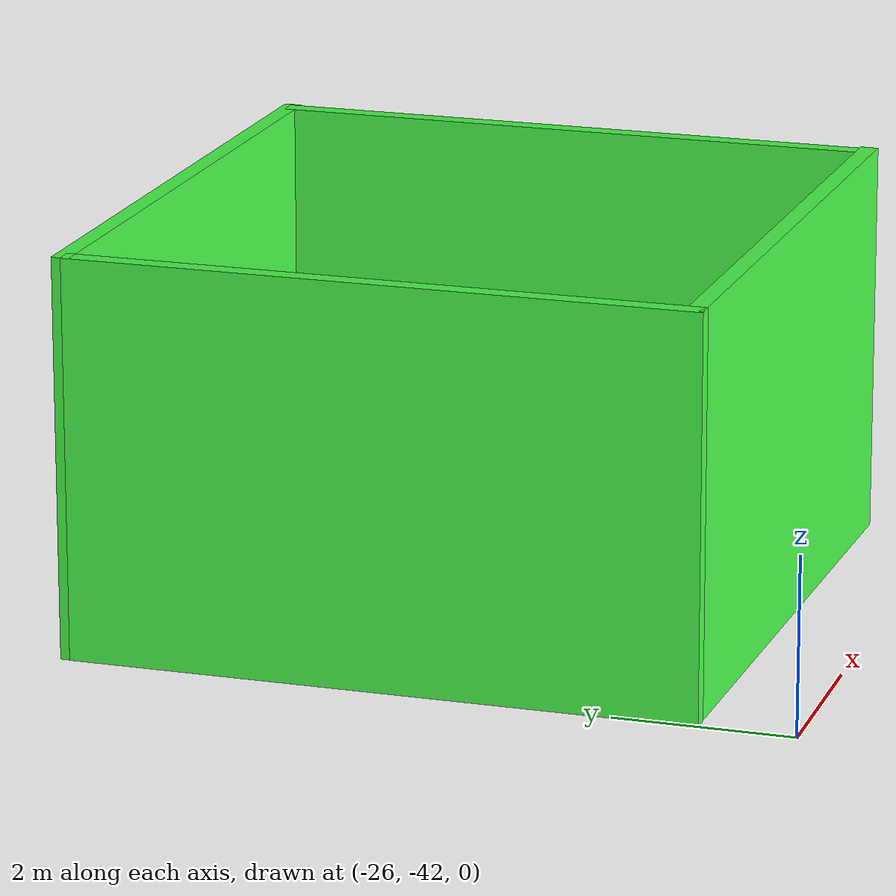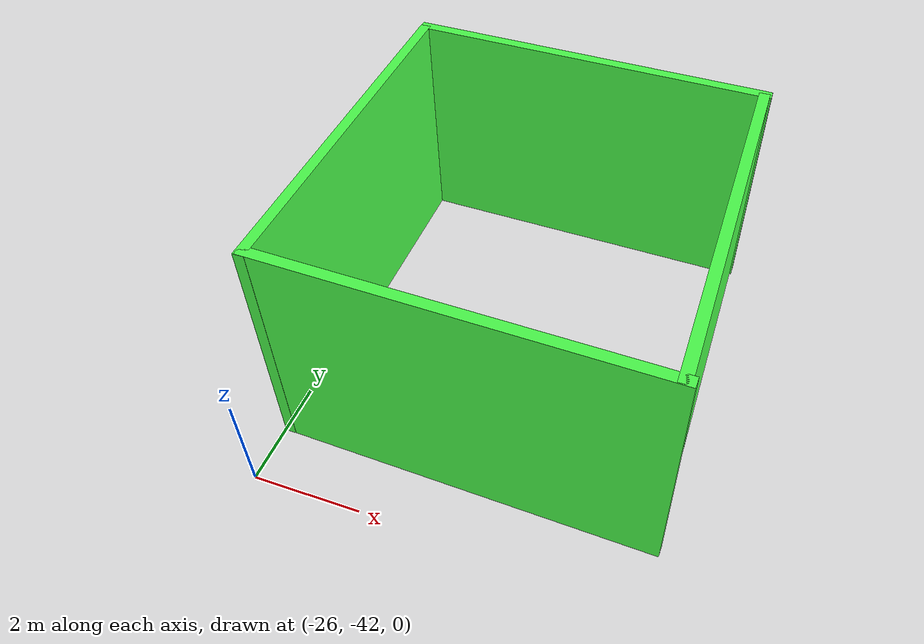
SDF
<sdf version="1.7">
 <world name="default">
  <model name="wall_clone_0_0">
   <pose>-22.5 -37.5 2.25 0 -0 0</pose>
   <frame name="closed_green_wall::__model__" attached_to="closed_green_wall::link_0">
    <pose relative_to="__model__">0 0 0 0 -0 0</pose>
   </frame>
   <link name="closed_green_wall::link_0">
    <inertial>
     <mass>1</mass>
     <inertia>
      <ixx>0.166667</ixx>
      <ixy>0</ixy>
      <ixz>0</ixz>
      <iyy>0.166667</iyy>
      <iyz>0</iyz>
      <izz>0.166667</izz>
     </inertia>
    </inertial>
    <pose relative_to="closed_green_wall::__model__">3.37098 -0.107634 -0 0 -0 0</pose>
    <visual name="visual">
     <geometry><box><size>0.2 7 4.5</size></box></geometry>
     <material>
      <lighting>1</lighting>
      <script><uri>file://media/materials/scripts/gazebo.material</uri><name>Gazebo/Grey</name></script>
      <shader type="vertex"><normal_map>__default__</normal_map></shader>
      <ambient>0.3 1 0.3 1</ambient>
      <diffuse>0.7 0.7 0.7 1</diffuse>
      <specular>0.01 0.01 0.01 1</specular>
      <emissive>0 0 0 1</emissive>
     </material>
    </visual>
    <collision name="collision">
     <geometry><box><size>0.2 7 4.5</size></box></geometry>
     <surface>
      <friction>
       <ode><mu>1</mu><mu2>1</mu2><fdir1>0 0 0</fdir1><slip1>0</slip1><slip2>0</slip2></ode>
       <torsional>
        <coefficient>1</coefficient>
        <patch_radius>0</patch_radius>
        <surface_radius>0</surface_radius>
        <use_patch_radius>1</use_patch_radius>
        <ode><slip>0</slip></ode>
       </torsional>
      </friction>
      <bounce><restitution_coefficient>0</restitution_coefficient><threshold>1e+06</threshold></bounce>
      <contact>
       <collide_without_contact>0</collide_without_contact>
       <collide_without_contact_bitmask>1</collide_without_contact_bitmask>
       <collide_bitmask>1</collide_bitmask>
       <ode>
        <soft_cfm>0</soft_cfm>
        <soft_erp>0.2</soft_erp>
        <kp>1e+13</kp>
        <kd>1</kd>
        <max_vel>0.01</max_vel>
        <min_depth>0</min_depth>
       </ode>
       <bullet>
        <split_impulse>1</split_impulse>
        <split_impulse_penetration_threshold>-0.01</split_impulse_penetration_threshold>
        <soft_cfm>0</soft_cfm>
        <soft_erp>0.2</soft_erp>
        <kp>1e+13</kp>
        <kd>1</kd>
       </bullet>
      </contact>
     </surface>
    </collision>
   </link>
   <link name="closed_green_wall::link_0_clone">
    <inertial>
     <mass>1</mass>
     <inertia>
      <ixx>0.166667</ixx>
      <ixy>0</ixy>
      <ixz>0</ixz>
      <iyy>0.166667</iyy>
      <iyz>0</iyz>
      <izz>0.166667</izz>
     </inertia>
    </inertial>
    <pose relative_to="closed_green_wall::__model__">0.024232 -3.42805 -0 0 0 -1.59986</pose>
    <visual name="visual">
     <geometry><box><size>0.2 7 4.5</size></box></geometry>
     <material>
      <lighting>1</lighting>
      <script><uri>file://media/materials/scripts/gazebo.material</uri><name>Gazebo/Grey</name></script>
      <shader type="vertex"><normal_map>__default__</normal_map></shader>
      <ambient>0.3 1 0.3 1</ambient>
      <diffuse>0.7 0.7 0.7 1</diffuse>
      <specular>0.01 0.01 0.01 1</specular>
      <emissive>0 0 0 1</emissive>
     </material>
    </visual>
    <collision name="collision">
     <geometry><box><size>0.2 7 4.5</size></box></geometry>
     <surface>
      <friction>
       <ode><mu>1</mu><mu2>1</mu2><fdir1>0 0 0</fdir1><slip1>0</slip1><slip2>0</slip2></ode>
       <torsional>
        <coefficient>1</coefficient>
        <patch_radius>0</patch_radius>
        <surface_radius>0</surface_radius>
        <use_patch_radius>1</use_patch_radius>
        <ode><slip>0</slip></ode>
       </torsional>
      </friction>
      <bounce><restitution_coefficient>0</restitution_coefficient><threshold>1e+06</threshold></bounce>
      <contact>
       <collide_without_contact>0</collide_without_contact>
       <collide_without_contact_bitmask>1</collide_without_contact_bitmask>
       <collide_bitmask>1</collide_bitmask>
       <ode>
        <soft_cfm>0</soft_cfm>
        <soft_erp>0.2</soft_erp>
        <kp>1e+13</kp>
        <kd>1</kd>
        <max_vel>0.01</max_vel>
        <min_depth>0</min_depth>
       </ode>
       <bullet>
        <split_impulse>1</split_impulse>
        <split_impulse_penetration_threshold>-0.01</split_impulse_penetration_threshold>
        <soft_cfm>0</soft_cfm>
        <soft_erp>0.2</soft_erp>
        <kp>1e+13</kp>
        <kd>1</kd>
       </bullet>
      </contact>
     </surface>
    </collision>
   </link>
   <link name="closed_green_wall::link_0_clone_0">
    <inertial>
     <mass>1</mass>
     <inertia>
      <ixx>0.166667</ixx>
      <ixy>0</ixy>
      <ixz>0</ixz>
      <iyy>0.166667</iyy>
      <iyz>0</iyz>
      <izz>0.166667</izz>
     </inertia>
    </inertial>
    <pose relative_to="closed_green_wall::__model__">-3.40001 0.065208 -0 0 -0 0</pose>
    <visual name="visual">
     <geometry><box><size>0.2 7 4.5</size></box></geometry>
     <material>
      <lighting>1</lighting>
      <script><uri>file://media/materials/scripts/gazebo.material</uri><name>Gazebo/Grey</name></script>
      <shader type="vertex"><normal_map>__default__</normal_map></shader>
      <ambient>0.3 1 0.3 1</ambient>
      <diffuse>0.7 0.7 0.7 1</diffuse>
      <specular>0.01 0.01 0.01 1</specular>
      <emissive>0 0 0 1</emissive>
     </material>
    </visual>
    <collision name="collision">
     <geometry><box><size>0.2 7 4.5</size></box></geometry>
     <surface>
      <friction>
       <ode><mu>1</mu><mu2>1</mu2><fdir1>0 0 0</fdir1><slip1>0</slip1><slip2>0</slip2></ode>
       <torsional>
        <coefficient>1</coefficient>
        <patch_radius>0</patch_radius>
        <surface_radius>0</surface_radius>
        <use_patch_radius>1</use_patch_radius>
        <ode><slip>0</slip></ode>
       </torsional>
      </friction>
      <bounce><restitution_coefficient>0</restitution_coefficient><threshold>1e+06</threshold></bounce>
      <contact>
       <collide_without_contact>0</collide_without_contact>
       <collide_without_contact_bitmask>1</collide_without_contact_bitmask>
       <collide_bitmask>1</collide_bitmask>
       <ode>
        <soft_cfm>0</soft_cfm>
        <soft_erp>0.2</soft_erp>
        <kp>1e+13</kp>
        <kd>1</kd>
        <max_vel>0.01</max_vel>
        <min_depth>0</min_depth>
       </ode>
       <bullet>
        <split_impulse>1</split_impulse>
        <split_impulse_penetration_threshold>-0.01</split_impulse_penetration_threshold>
        <soft_cfm>0</soft_cfm>
        <soft_erp>0.2</soft_erp>
        <kp>1e+13</kp>
        <kd>1</kd>
       </bullet>
      </contact>
     </surface>
    </collision>
   </link>
   <link name="closed_green_wall::link_0_clone_clone">
    <inertial>
     <mass>1</mass>
     <inertia>
      <ixx>0.166667</ixx>
      <ixy>0</ixy>
      <ixz>0</ixz>
      <iyy>0.166667</iyy>
      <iyz>0</iyz>
      <izz>0.166667</izz>
     </inertia>
    </inertial>
    <pose relative_to="closed_green_wall::__model__">0.004806 3.47046 -0 0 0 -1.59986</pose>
    <visual name="visual">
     <geometry><box><size>0.2 7 4.5</size></box></geometry>
     <material>
      <lighting>1</lighting>
      <script><uri>file://media/materials/scripts/gazebo.material</uri><name>Gazebo/Grey</name></script>
      <shader type="vertex"><normal_map>__default__</normal_map></shader>
      <ambient>0.3 1 0.3 1</ambient>
      <diffuse>0.7 0.7 0.7 1</diffuse>
      <specular>0.01 0.01 0.01 1</specular>
      <emissive>0 0 0 1</emissive>
     </material>
    </visual>
    <collision name="collision">
     <geometry><box><size>0.2 7 4.5</size></box></geometry>
     <surface>
      <friction>
       <ode><mu>1</mu><mu2>1</mu2><fdir1>0 0 0</fdir1><slip1>0</slip1><slip2>0</slip2></ode>
       <torsional>
        <coefficient>1</coefficient>
        <patch_radius>0</patch_radius>
        <surface_radius>0</surface_radius>
        <use_patch_radius>1</use_patch_radius>
        <ode><slip>0</slip></ode>
       </torsional>
      </friction>
      <bounce><restitution_coefficient>0</restitution_coefficient><threshold>1e+06</threshold></bounce>
      <contact>
       <collide_without_contact>0</collide_without_contact>
       <collide_without_contact_bitmask>1</collide_without_contact_bitmask>
       <collide_bitmask>1</collide_bitmask>
       <ode>
        <soft_cfm>0</soft_cfm>
        <soft_erp>0.2</soft_erp>
        <kp>1e+13</kp>
        <kd>1</kd>
        <max_vel>0.01</max_vel>
        <min_depth>0</min_depth>
       </ode>
       <bullet>
        <split_impulse>1</split_impulse>
        <split_impulse_penetration_threshold>-0.01</split_impulse_penetration_threshold>
        <soft_cfm>0</soft_cfm>
        <soft_erp>0.2</soft_erp>
        <kp>1e+13</kp>
        <kd>1</kd>
       </bullet>
      </contact>
     </surface>
    </collision>
   </link>
   <joint name="closed_green_wall::link_0_JOINT_1" type="fixed">
    <parent>closed_green_wall::link_0</parent>
    <child>closed_green_wall::link_0_clone_clone</child>
    <physics>
     <ode><limit><cfm>0</cfm><erp>0.2</erp></limit><suspension><cfm>0</cfm><erp>0.2</erp></suspension></ode>
    </physics>
   </joint>
   <joint name="closed_green_wall::link_0_clone_0_JOINT_3" type="fixed">
    <parent>closed_green_wall::link_0_clone_0</parent>
    <child>closed_green_wall::link_0_clone</child>
    <physics>
     <ode><limit><cfm>0</cfm><erp>0.2</erp></limit><suspension><cfm>0</cfm><erp>0.2</erp></suspension></ode>
    </physics>
   </joint>
   <joint name="closed_green_wall::link_0_clone_JOINT_0" type="fixed">
    <parent>closed_green_wall::link_0_clone</parent>
    <child>closed_green_wall::link_0</child>
    <physics>
     <ode><limit><cfm>0</cfm><erp>0.2</erp></limit><suspension><cfm>0</cfm><erp>0.2</erp></suspension></ode>
    </physics>
   </joint>
   <joint name="closed_green_wall::link_0_clone_clone_JOINT_2" type="fixed">
    <parent>closed_green_wall::link_0_clone_clone</parent>
    <child>closed_green_wall::link_0_clone_0</child>
    <physics>
     <ode><limit><cfm>0</cfm><erp>0.2</erp></limit><suspension><cfm>0</cfm><erp>0.2</erp></suspension></ode>
    </physics>
   </joint>
   <static>1</static>
  </model>
 </world>
</sdf>
